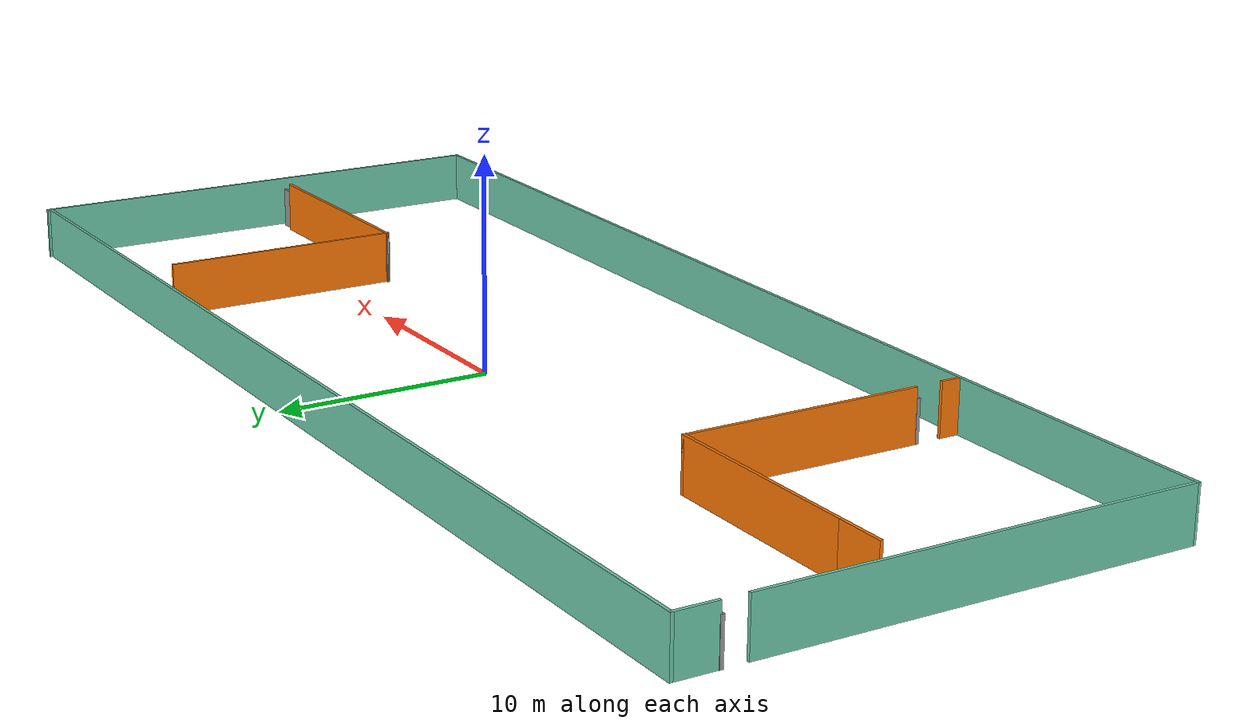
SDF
<?xml version='1.0'?>
<sdf version='1.6'>
  <model name='Building'>
    <pose frame=''>-1.11028 -1.8145 0 0 -0 0</pose>
    <link name='Door_0'>
      <collision name='Door_0_Collision'>
        <geometry>
          <box>
            <size>0.9 0.17 2</size>
          </box>
        </geometry>
        <pose frame=''>0 0 1 0 -0 0</pose>
      </collision>
      <visual name='Door_0_Visual'>
        <pose frame=''>0 0 1 0 -0 0</pose>
        <geometry>
          <box>
            <size>0.9 0.17 2</size>
          </box>
        </geometry>
        <material>
          <script>
            <uri>file://media/materials/scripts/gazebo.material</uri>
            <name>Gazebo/Grey</name>
          </script>
        </material>
      </visual>
      <pose frame=''>-28.7575 9.84664 0 0 -0 0</pose>
    </link>
    <link name='Door_1'>
      <collision name='Door_1_Collision'>
        <geometry>
          <box>
            <size>0.9 0.17 2</size>
          </box>
        </geometry>
        <pose frame=''>0 0 1 0 -0 0</pose>
      </collision>
      <visual name='Door_1_Visual'>
        <pose frame=''>0 0 1 0 -0 0</pose>
        <geometry>
          <box>
            <size>0.9 0.17 2</size>
          </box>
        </geometry>
        <material>
          <script>
            <uri>file://media/materials/scripts/gazebo.material</uri>
            <name>Gazebo/Grey</name>
          </script>
        </material>
      </visual>
      <pose frame=''>-15.1147 -9.07776 0 0 -0 0</pose>
    </link>
    <link name='Door_2'>
      <collision name='Door_2_Collision'>
        <geometry>
          <box>
            <size>0.9 0.17 2</size>
          </box>
        </geometry>
        <pose frame=''>0 0 1 0 -0 0</pose>
      </collision>
      <visual name='Door_2_Visual'>
        <pose frame=''>0 0 1 0 -0 0</pose>
        <geometry>
          <box>
            <size>0.9 0.17 2</size>
          </box>
        </geometry>
        <material>
          <script>
            <uri>file://media/materials/scripts/gazebo.material</uri>
            <name>Gazebo/Grey</name>
          </script>
        </material>
      </visual>
      <pose frame=''>-28.5663 2.5444 0 0 -0 0</pose>
    </link>
    <link name='Door_4'>
      <collision name='Door_4_Collision'>
        <geometry>
          <box>
            <size>0.9 0.17 2</size>
          </box>
        </geometry>
        <pose frame=''>0 0 1 0 -0 0</pose>
      </collision>
      <visual name='Door_4_Visual'>
        <pose frame=''>0 0 1 0 -0 0</pose>
        <geometry>
          <box>
            <size>0.9 0.17 2</size>
          </box>
        </geometry>
        <material>
          <script>
            <uri>file://media/materials/scripts/gazebo.material</uri>
            <name>Gazebo/Grey</name>
          </script>
        </material>
      </visual>
      <pose frame=''>28.2667 -1.23216 0 0 -0 0</pose>
    </link>
    <link name='Door_5'>
      <collision name='Door_5_Collision'>
        <geometry>
          <box>
            <size>0.9 0.17 2</size>
          </box>
        </geometry>
        <pose frame=''>0 0 1 0 -0 0</pose>
      </collision>
      <visual name='Door_5_Visual'>
        <pose frame=''>0 0 1 0 -0 0</pose>
        <geometry>
          <box>
            <size>0.9 0.17 2</size>
          </box>
        </geometry>
        <material>
          <script>
            <uri>file://media/materials/scripts/gazebo.material</uri>
            <name>Gazebo/Grey</name>
          </script>
        </material>
      </visual>
      <pose frame=''>16.8813 11.3908 0 0 -0 0</pose>
    </link>
    <link name='Wall_0'>
      <collision name='Wall_0_Collision'>
        <geometry>
          <box>
            <size>19.8005 0.15 2.5</size>
          </box>
        </geometry>
        <pose frame=''>0 0 1.25 0 -0 0</pose>
      </collision>
      <visual name='Wall_0_Visual'>
        <pose frame=''>0 0 1.25 0 -0 0</pose>
        <geometry>
          <box>
            <size>19.8005 0.15 2.5</size>
          </box>
        </geometry>
        <material>
          <script>
            <uri>file://media/materials/scripts/gazebo.material</uri>
            <name>Gazebo/Grey</name>
          </script>
          <ambient>0.435294 0.796078 0.67451 1</ambient>
        </material>
        <meta>
          <layer>0</layer>
        </meta>
      </visual>
      <pose frame=''>-29.1106 -1.17691 0 0 0 -1.5708</pose>
    </link>
    <link name='Wall_1'>
      <collision name='Wall_1_Collision'>
        <geometry>
          <box>
            <size>58.3767 0.15 2.5</size>
          </box>
        </geometry>
        <pose frame=''>0 0 1.25 0 -0 0</pose>
      </collision>
      <visual name='Wall_1_Visual'>
        <pose frame=''>0 0 1.25 0 -0 0</pose>
        <geometry>
          <box>
            <size>58.3767 0.15 2.5</size>
          </box>
        </geometry>
        <material>
          <script>
            <uri>file://media/materials/scripts/gazebo.material</uri>
            <name>Gazebo/Grey</name>
          </script>
          <ambient>0.435294 0.796078 0.67451 1</ambient>
        </material>
        <meta>
          <layer>0</layer>
        </meta>
      </visual>
      <pose frame=''>0 -11.524 0 0 0 -0.013673</pose>
    </link>
    <link name='Wall_12'>
      <collision name='Wall_12_Collision'>
        <geometry>
          <box>
            <size>2.5 0.15 2.5</size>
          </box>
        </geometry>
        <pose frame=''>0 0 1.25 0 -0 0</pose>
      </collision>
      <visual name='Wall_12_Visual'>
        <pose frame=''>0 0 1.25 0 -0 0</pose>
        <geometry>
          <box>
            <size>2.5 0.15 2.5</size>
          </box>
        </geometry>
        <material>
          <script>
            <uri>file://media/materials/scripts/gazebo.material</uri>
            <name>Gazebo/Grey</name>
          </script>
          <ambient>0.996078 0.47451 0.0196078 1</ambient>
        </material>
        <meta>
          <layer>0</layer>
        </meta>
      </visual>
      <pose frame=''>-26.5095 2.28662 0 0 -0 3.14159</pose>
    </link>
    <link name='Wall_14'>
      <collision name='Wall_14_Collision'>
        <geometry>
          <box>
            <size>0.25 0.15 2.5</size>
          </box>
        </geometry>
        <pose frame=''>0 0 1.25 0 -0 0</pose>
      </collision>
      <visual name='Wall_14_Visual'>
        <pose frame=''>0 0 1.25 0 -0 0</pose>
        <geometry>
          <box>
            <size>0.25 0.15 2.5</size>
          </box>
        </geometry>
        <material>
          <script>
            <uri>file://media/materials/scripts/gazebo.material</uri>
            <name>Gazebo/Grey</name>
          </script>
          <ambient>1 1 1 1</ambient>
        </material>
        <meta>
          <layer>0</layer>
        </meta>
      </visual>
      <pose frame=''>16.343 -1.08341 0 0 -0 2.61799</pose>
    </link>
    <link name='Wall_15'>
      <collision name='Wall_15_Collision'>
        <geometry>
          <box>
            <size>11.5 0.15 2.5</size>
          </box>
        </geometry>
        <pose frame=''>0 0 1.25 0 -0 0</pose>
      </collision>
      <visual name='Wall_15_Visual'>
        <pose frame=''>0 0 1.25 0 -0 0</pose>
        <geometry>
          <box>
            <size>11.5 0.15 2.5</size>
          </box>
        </geometry>
        <material>
          <script>
            <uri>file://media/materials/scripts/gazebo.material</uri>
            <name>Gazebo/Grey</name>
          </script>
          <ambient>0.996078 0.47451 0.0196078 1</ambient>
        </material>
        <meta>
          <layer>0</layer>
        </meta>
      </visual>
      <pose frame=''>21.9747 -1.05841 0 0 -0 0</pose>
    </link>
    <link name='Wall_17'>
      <collision name='Wall_17_Collision'>
        <geometry>
          <box>
            <size>11.5 0.15 2.5</size>
          </box>
        </geometry>
        <pose frame=''>0 0 1.25 0 -0 0</pose>
      </collision>
      <visual name='Wall_17_Visual'>
        <pose frame=''>0 0 1.25 0 -0 0</pose>
        <geometry>
          <box>
            <size>11.5 0.15 2.5</size>
          </box>
        </geometry>
        <material>
          <script>
            <uri>file://media/materials/scripts/gazebo.material</uri>
            <name>Gazebo/Grey</name>
          </script>
          <ambient>0.996078 0.47451 0.0196078 1</ambient>
        </material>
        <meta>
          <layer>0</layer>
        </meta>
      </visual>
      <pose frame=''>16.3863 4.56659 0 0 -0 1.5708</pose>
    </link>
    <link name='Wall_2'>
      <collision name='Wall_2_Collision'>
        <geometry>
          <box>
            <size>23.8713 0.15 2.5</size>
          </box>
        </geometry>
        <pose frame=''>0 0 1.25 0 -0 0</pose>
      </collision>
      <visual name='Wall_2_Visual'>
        <pose frame=''>0 0 1.25 0 -0 0</pose>
        <geometry>
          <box>
            <size>23.8713 0.15 2.5</size>
          </box>
        </geometry>
        <material>
          <script>
            <uri>file://media/materials/scripts/gazebo.material</uri>
            <name>Gazebo/Grey</name>
          </script>
          <ambient>0.435294 0.796078 0.67451 1</ambient>
        </material>
        <meta>
          <layer>0</layer>
        </meta>
      </visual>
      <pose frame=''>29.1106 0.062386 0 0 -0 1.5708</pose>
    </link>
    <link name='Wall_3'>
      <collision name='Wall_3_Collision'>
        <geometry>
          <box>
            <size>58.3714 0.15 2.5</size>
          </box>
        </geometry>
        <pose frame=''>0 0 1.25 0 -0 0</pose>
      </collision>
      <visual name='Wall_3_Visual'>
        <pose frame=''>0 0 1.25 0 -0 0</pose>
        <geometry>
          <box>
            <size>58.3714 0.15 2.5</size>
          </box>
        </geometry>
        <material>
          <script>
            <uri>file://media/materials/scripts/gazebo.material</uri>
            <name>Gazebo/Grey</name>
          </script>
          <ambient>0.435294 0.796078 0.67451 1</ambient>
        </material>
        <meta>
          <layer>0</layer>
        </meta>
      </visual>
      <pose frame=''>0 11.7993 0 0 -0 3.14159</pose>
    </link>
    <link name='Wall_4'>
      <collision name='Wall_4_Collision'>
        <geometry>
          <box>
            <size>2 0.15 2.5</size>
          </box>
        </geometry>
        <pose frame=''>0 0 1.25 0 -0 0</pose>
      </collision>
      <visual name='Wall_4_Visual'>
        <pose frame=''>0 0 1.25 0 -0 0</pose>
        <geometry>
          <box>
            <size>2 0.15 2.5</size>
          </box>
        </geometry>
        <material>
          <script>
            <uri>file://media/materials/scripts/gazebo.material</uri>
            <name>Gazebo/Grey</name>
          </script>
          <ambient>0.435294 0.796078 0.67451 1</ambient>
        </material>
        <meta>
          <layer>0</layer>
        </meta>
      </visual>
      <pose frame=''>-29.1106 10.8743 0 0 0 -1.5708</pose>
    </link>
    <link name='Wall_6'>
      <collision name='Wall_6_Collision'>
        <geometry>
          <box>
            <size>10 0.15 2.5</size>
          </box>
        </geometry>
        <pose frame=''>0 0 1.25 0 -0 0</pose>
      </collision>
      <visual name='Wall_6_Visual'>
        <pose frame=''>0 0 1.25 0 -0 0</pose>
        <geometry>
          <box>
            <size>10 0.15 2.5</size>
          </box>
        </geometry>
        <material>
          <script>
            <uri>file://media/materials/scripts/gazebo.material</uri>
            <name>Gazebo/Grey</name>
          </script>
          <ambient>0.996078 0.47451 0.0196078 1</ambient>
        </material>
        <meta>
          <layer>0</layer>
        </meta>
      </visual>
      <pose frame=''>-20.4095 2.28662 0 0 -0 0</pose>
    </link>
    <link name='Wall_7'>
      <collision name='Wall_7_Collision'>
        <geometry>
          <box>
            <size>11.3585 0.15 2.5</size>
          </box>
        </geometry>
        <pose frame=''>0 0 1.25 0 -0 0</pose>
      </collision>
      <visual name='Wall_7_Visual'>
        <pose frame=''>0 0 1.25 0 -0 0</pose>
        <geometry>
          <box>
            <size>11.3585 0.15 2.5</size>
          </box>
        </geometry>
        <material>
          <script>
            <uri>file://media/materials/scripts/gazebo.material</uri>
            <name>Gazebo/Grey</name>
          </script>
          <ambient>0.996078 0.47451 0.0196078 1</ambient>
        </material>
        <meta>
          <layer>0</layer>
        </meta>
      </visual>
      <pose frame=''>-15.4845 -3.31763 0 0 0 -1.5708</pose>
    </link>
    <link name='Wall_9'>
      <collision name='Wall_9_Collision'>
        <geometry>
          <box>
            <size>1 0.15 2.5</size>
          </box>
        </geometry>
        <pose frame=''>0 0 1.25 0 -0 0</pose>
      </collision>
      <visual name='Wall_9_Visual'>
        <pose frame=''>0 0 1.25 0 -0 0</pose>
        <geometry>
          <box>
            <size>1 0.15 2.5</size>
          </box>
        </geometry>
        <material>
          <script>
            <uri>file://media/materials/scripts/gazebo.material</uri>
            <name>Gazebo/Grey</name>
          </script>
          <ambient>0.996078 0.47451 0.0196078 1</ambient>
        </material>
        <meta>
          <layer>0</layer>
        </meta>
      </visual>
      <pose frame=''>-15.4375 -10.805 0 0 -0 1.5708</pose>
    </link>
    <static>1</static>
  </model>
</sdf>
